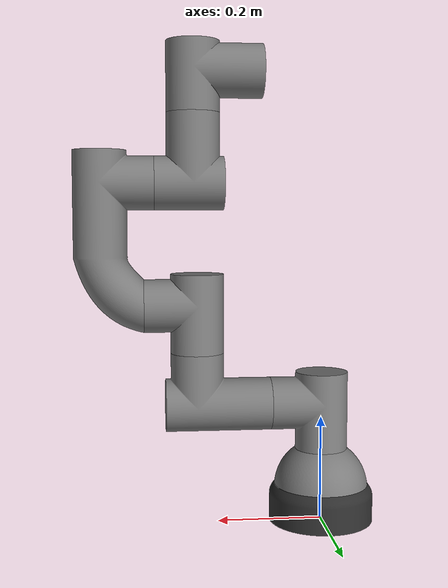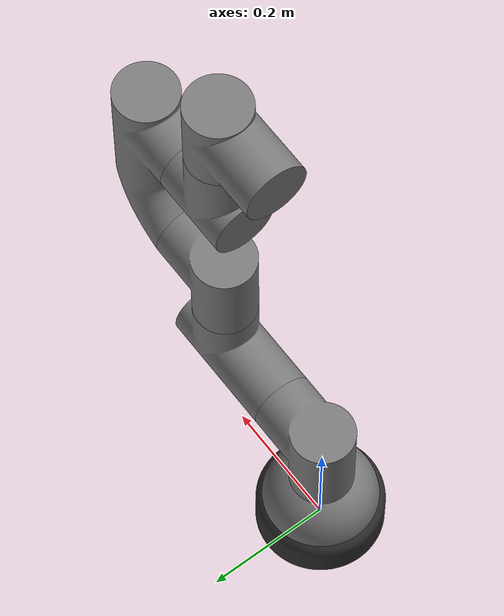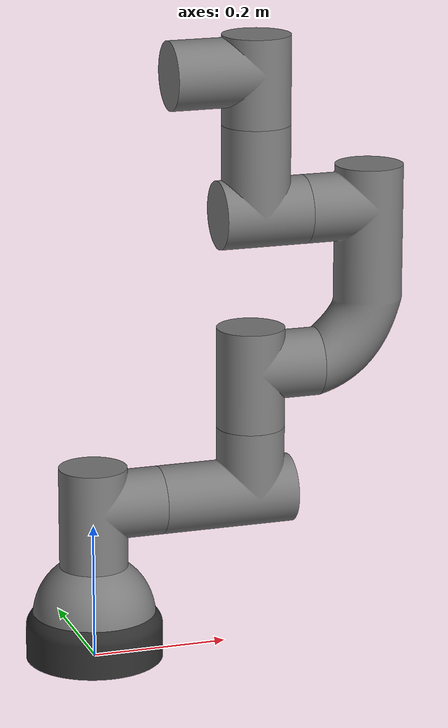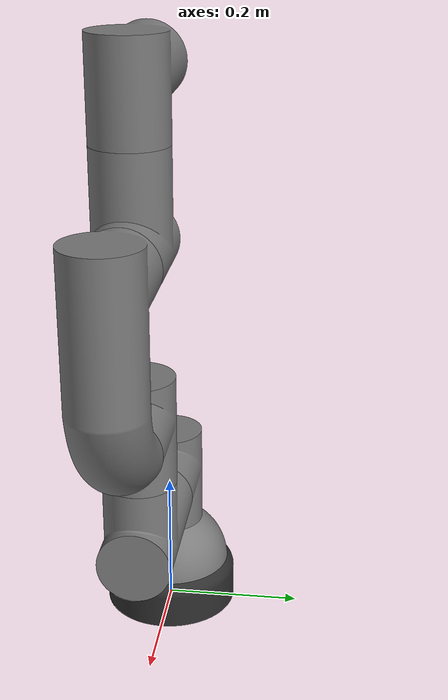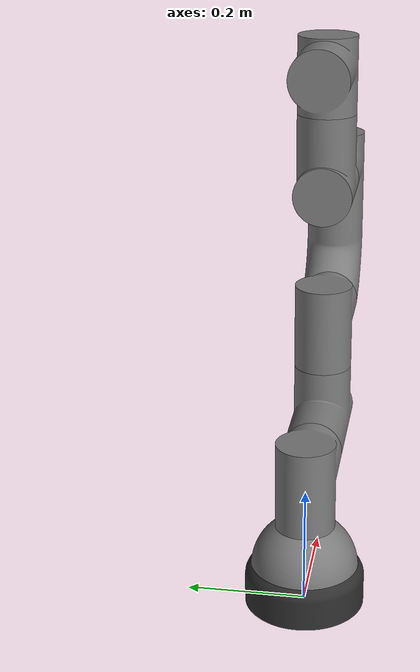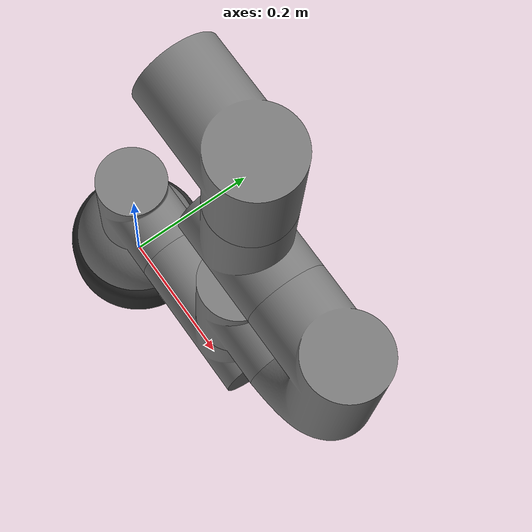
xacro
<?xml version="1.0"?>
<robot xmlns:xacro="http://www.ros.org/wiki/xacro" name="arm">
    <xacro:arg name="initial_positions_file" default="initial_positions.yaml" />

    <!-- Import arm urdf file -->
    <xacro:include filename="$(find arm_description)/urdf/6dof_arm.urdf" />

    <!-- Import control_xacro -->
    <xacro:include filename="arm.ros2_control.xacro" />

    <xacro:arm_ros2_control name="FakeSystem" initial_positions_file="$(arg initial_positions_file)"/>

</robot>

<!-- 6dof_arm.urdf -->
<robot name="arm">

    <material name="graphite">
        <color rgba="0.18 0.18 0.18 1.0"/>
    </material>

    <material name="aluminum">
        <color rgba="0.48 0.48 0.48 1.0"/>
    </material>

    <link name="base">
        <inertial>
            <origin xyz="0 0 0.034434" rpy="0 0 0"/>
            <mass value="1.5"/>
            <inertia
                ixx="0.004283729"
                ixy="0.0"
                ixz="0.0"
                iyy="0.004283647"
                iyz="0.0"
                izz="0.007371875"/>
        </inertial>

        <visual>
            <origin xyz="0 0 0" rpy="0 0 0"/>
            <geometry>
                <mesh filename="package://arm_description/meshes/Base.stl" scale="0.001 0.001 0.001"/>
            </geometry>
            <material name="graphite"/>
        </visual>

        <collision>
            <origin xyz="0 0 0" rpy="0 0 0"/>
            <geometry>
                <mesh filename="package://arm_description/meshes/Base.stl" scale="0.001 0.001 0.001"/>
            </geometry>
        </collision>

    </link>

    <link name="base_link">
        <inertial>
            <origin xyz="0 0 0.029578" rpy="0 0 0"/>
            <mass value="1.5"/>
            <inertia
                ixx="0.00296583"
                ixy="0.0"
                ixz="0.0"
                iyy="0.00296577"
                iyz="0.0"
                izz="0.00485270"/>
        </inertial>

        <visual>
            <origin xyz="0 0 -0.07" rpy="0 0 0"/>
            <geometry>
                <mesh filename="package://arm_description/meshes/Base_Joint.stl" scale="0.001 0.001 0.001"/>
            </geometry>
            <material name="aluminum"/>
        </visual>

        <collision>
            <origin xyz="0 0 -0.07" rpy="0 0 0"/>
            <geometry>
                <mesh filename="package://arm_description/meshes/Base_Joint.stl" scale="0.001 0.001 0.001"/>
            </geometry>
        </collision>

    </link>

    <link name="link_1">
        <inertial>
            <origin xyz="0.019577 0 0.079161" rpy="0 0 0"/>
            <mass value="1.0"/>
            <inertia
                ixx="0.00221515"
                ixy="0.0"
                ixz="-0.00021216"
                iyy="0.00310288"
                iyz="0.0"
                izz="0.00218821"/>
        </inertial>

        <visual>
            <origin xyz="0 0 -0.140" rpy="0 0 0"/>
            <geometry>
                <mesh filename="package://arm_description/meshes/JOINT1.stl" scale="0.001 0.001 0.001"/>
            </geometry>
            <material name="aluminum"/>
        </visual>

        <collision>
            <origin xyz="0 0 -0.140" rpy="0 0 0"/>
            <geometry>
                <mesh filename="package://arm_description/meshes/JOINT1.stl" scale="0.001 0.001 0.001"/>
            </geometry>
        </collision>

        <!-- Shoulder -->

        <!-- Arm -->
    </link>

    <link name="link_2">
        <inertial>
            <origin xyz="0.108942 0 0.065777" rpy="0 0 0"/>
            <mass value="1.0"/>
            <inertia
                ixx="0.00206512"
                ixy="0.0"
                ixz="-0.00048954"
                iyy="0.00441906"
                iyz="0.0"
                izz="0.00364423"/>
        </inertial>

        <visual>
            <origin xyz="-0.100 0 -0.230" rpy="0 0 0"/>
            <geometry>
                <mesh filename="package://arm_description/meshes/JOINT2.stl" scale="0.001 0.001 0.001"/>
            </geometry>
            <material name="aluminum"/>
        </visual>

        <collision>
            <origin xyz="-0.100 0 -0.230" rpy="0 0 0"/>
            <geometry>
                <mesh filename="package://arm_description/meshes/JOINT2.stl" scale="0.001 0.001 0.001"/>
            </geometry>
        </collision>
        <!-- Horizontal arm -->

        <!-- Joint housing -->
    </link>

    <link name="link_3">
        <inertial>
            <origin xyz="0.069576 0 0.079160" rpy="0 0 0"/>
            <mass value="1.0"/>
            <inertia
                ixx="0.00221521"
                ixy="0.0"
                ixz="-0.00021215"
                iyy="0.00310314"
                iyz="0.0"
                izz="0.00218845"/>
        </inertial>

        <visual>
            <origin xyz="-0.240 0 -0.330" rpy="0 0 0"/>
            <geometry>
                <mesh filename="package://arm_description/meshes/JOINT3.stl" scale="0.001 0.001 0.001"/>
            </geometry>
            <material name="aluminum"/>
        </visual>

        <collision>
            <origin xyz="-0.240 0 -0.330" rpy="0 0 0"/>
            <geometry>
                <mesh filename="package://arm_description/meshes/JOINT3.stl" scale="0.001 0.001 0.001"/>
            </geometry>
        </collision>

        <!-- Vertical joint housing -->

        <!-- Horizontal arm -->
    </link>

    <link name="link_4">
        <inertial>
            <origin xyz="0.080453 0 0.195867" rpy="0 0 0"/>
            <mass value="1.0"/>
            <inertia
                ixx="0.00903418"
                ixy="0.0"
                ixz="-0.00027018"
                iyy="0.00968988"
                iyz="0.0"
                izz="0.00193348"/>
        </inertial>

        <visual>
            <origin xyz="-0.340 0 -0.420" rpy="0 0 0"/>
            <geometry>
                <mesh filename="package://arm_description/meshes/JOINT4.stl" scale="0.001 0.001 0.001"/>
            </geometry>
            <material name="aluminum"/>
        </visual>

        <collision>
            <origin xyz="-0.340 0 -0.420" rpy="0 0 0"/>
            <geometry>
                <mesh filename="package://arm_description/meshes/JOINT4.stl" scale="0.001 0.001 0.001"/>
            </geometry>
        </collision>
    </link>

    <link name="link_5">
        <inertial>
            <origin xyz="-0.061801 0 0.084534" rpy="0 0 0"/>
            <mass value="0.6"/>
            <inertia
                ixx="0.00183933"
                ixy="0.0"
                ixz="0.00009839"
                iyy="0.00211001"
                iyz="0.0"
                izz="0.00104943"/>
        </inertial>

        <visual>
            <origin xyz="-0.320 0 -0.650" rpy="0 0 0"/>
            <geometry>
                <mesh filename="package://arm_description/meshes/JOINT5.stl" scale="0.001 0.001 0.001"/>
            </geometry>
            <material name="aluminum"/>
        </visual>

        <collision>
            <origin xyz="-0.320 0 -0.650" rpy="0 0 0"/>
            <geometry>
                <mesh filename="package://arm_description/meshes/JOINT5.stl" scale="0.001 0.001 0.001"/>
            </geometry>
        </collision>
    </link>

    <link name="link_6">
        <inertial>
            <origin xyz="-0.095466 0 0.069956" rpy="0 0 0"/>
            <mass value="0.6"/>
            <inertia
                ixx="0.00106231"
                ixy="0.0"
                ixz="0.00015242"
                iyy="0.00212277"
                iyz="0.0"
                izz="0.00183934"/>
        </inertial>

        <visual>
            <origin xyz="-0.247055 0 -0.780" rpy="0 0 0"/>
            <geometry>
                <mesh filename="package://arm_description/meshes/JOINT6.stl" scale="0.001 0.001 0.001"/>
            </geometry>
            <material name="aluminum"/>
        </visual>

        <collision>
            <origin xyz="-0.247055 0 -0.780" rpy="0 0 0"/>
            <geometry>
                <mesh filename="package://arm_description/meshes/JOINT6.stl" scale="0.001 0.001 0.001"/>
            </geometry>
        </collision>

    </link>

    <!-- Joints -->
    <joint name="base_joint" type="revolute">
        <origin xyz="0 0 0.07" rpy="0 0 0"/>
        <parent link="base"/>
        <child link="base_link"/>
        <axis xyz="0 0 1"/>
        <limit
            lower="-3.14159265359"
            upper="3.14159265359"
            effort="50"
            velocity="2.0"/>
    </joint>

    <joint name="base_link1_joint" type="fixed">
        <origin xyz="0 0 0.07" rpy="0 0 0"/>
        <parent link="base_link"/>
        <child link="link_1"/>
    </joint>

    <joint name="link1_link2_joint" type="revolute">
        <origin xyz="0.100 0 0.090" rpy="0 0 0"/>
        <parent link="link_1"/>
        <child link="link_2"/>
        <axis xyz="1 0 0"/>
        <limit
            lower="-3.14159265359"
            upper="3.14159265359"
            effort="50"
            velocity="2.0"/>
    </joint>

    <joint name="link2_link3_joint" type="revolute">
        <origin xyz="0.140 0 0.100" rpy="0 0 0"/>
        <parent link="link_2"/>
        <child link="link_3"/>
        <axis xyz="0 0 1"/>
        <limit
            lower="-3.14159265359"
            upper="3.14159265359"
            effort="50"
            velocity="2.0"/>
    </joint>

    <joint name="link3_link4_joint" type="revolute">
        <origin xyz="0.100 0 0.090" rpy="0 0 0"/>
        <parent link="link_3"/>
        <child link="link_4"/>
        <axis xyz="1 0 0"/>
        <limit
            lower="-3.14159265359"
            upper="3.14159265359"
            effort="50"
            velocity="2.0"/>
    </joint>

    <joint name="link4_link5_joint" type="revolute">
        <origin xyz="-0.020 0 0.230" rpy="0 0 0"/>
        <parent link="link_4"/>
        <child link="link_5"/>
        <axis xyz="1 0 0"/>
        <limit
            lower="-3.14159265359"
            upper="3.14159265359"
            effort="50"
            velocity="2.0"/>
    </joint>

    <joint name="link5_link6_joint" type="revolute">
        <origin xyz="-0.07295 0 0.130" rpy="0 0 0"/>
        <parent link="link_5"/>
        <child link="link_6"/>
        <axis xyz="0 0 1"/>
        <limit
            lower="-3.14159265359"
            upper="3.14159265359"
            effort="50"
            velocity="2.0"/>
    </joint>
</robot>
